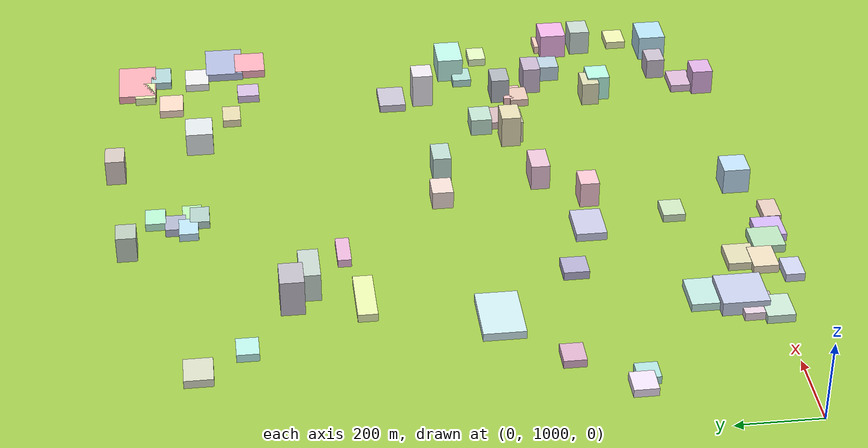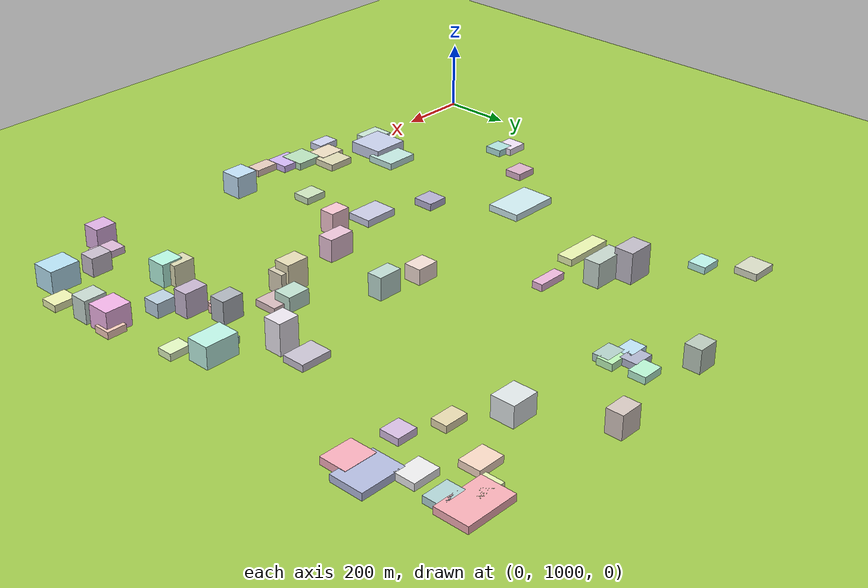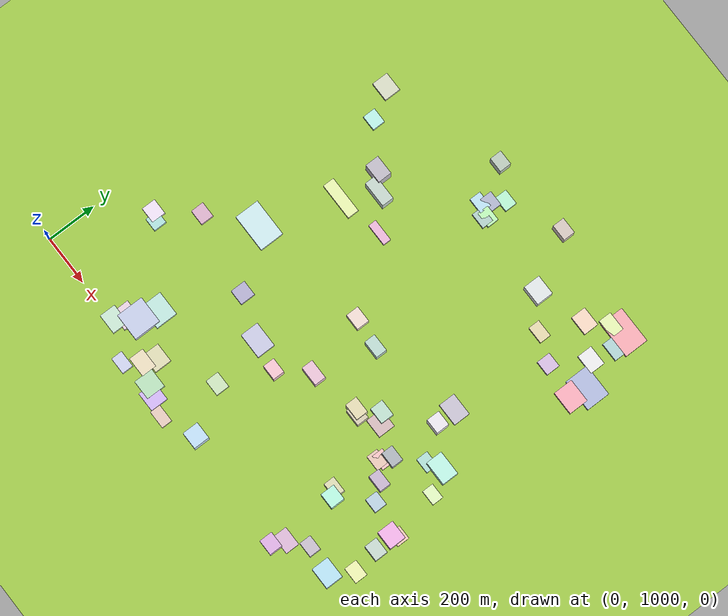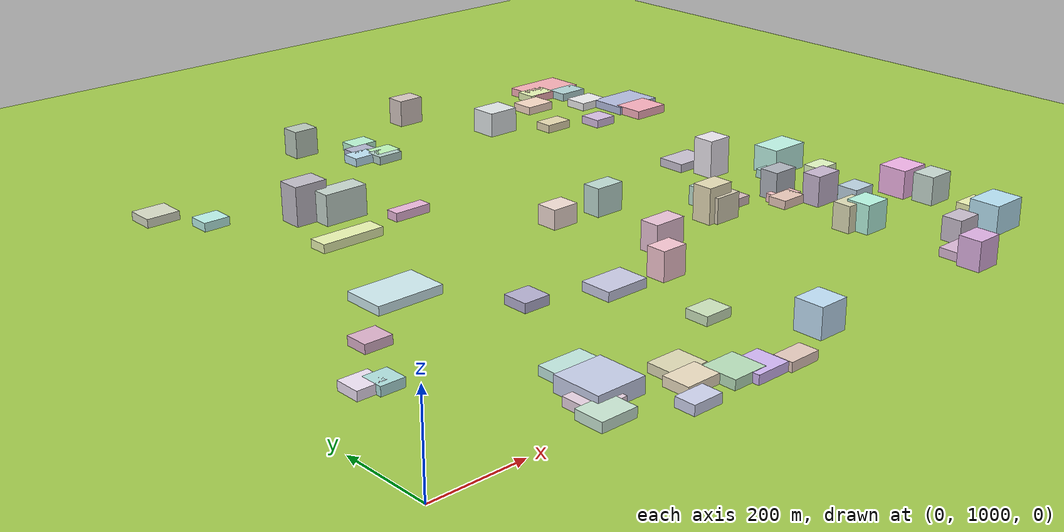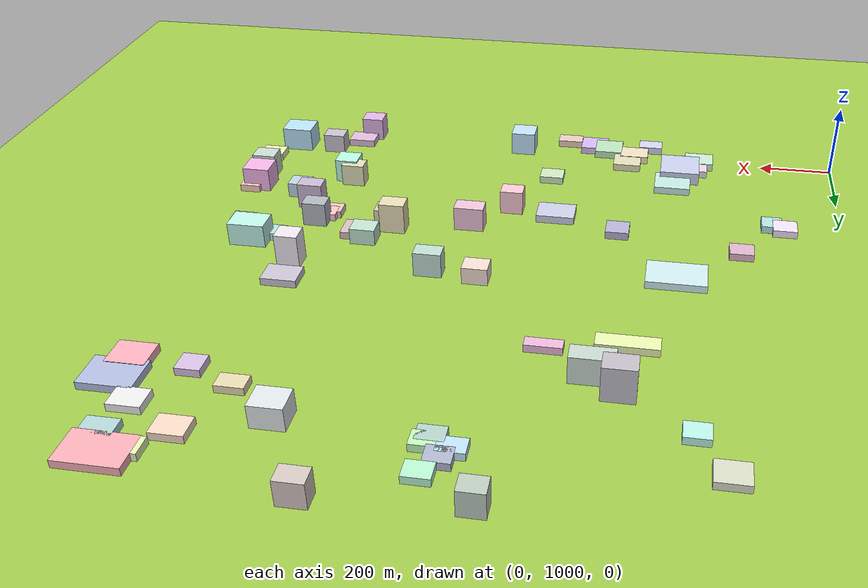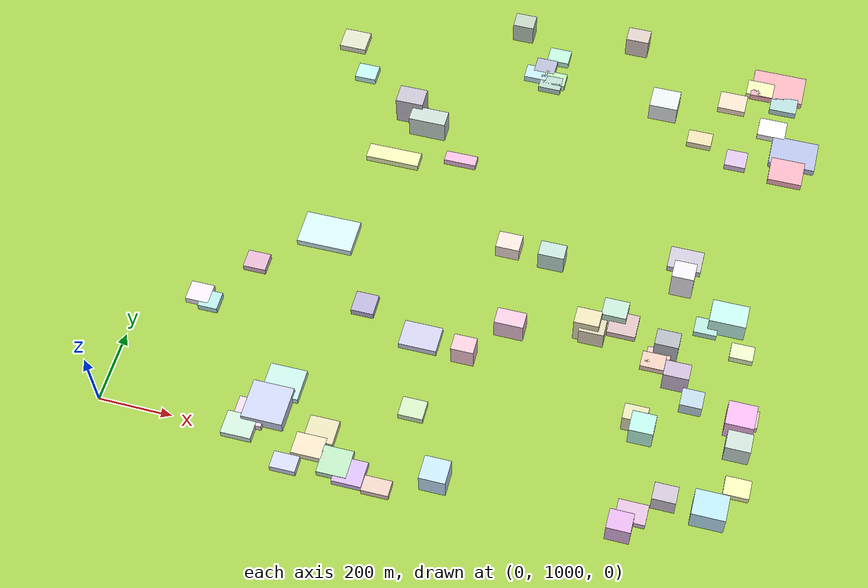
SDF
<sdf version="1.9">
 <world name="city_map">
  <model name="ground_plane">
   <static>1</static>
   <link name="link">
    <collision name="collision">
     <geometry><plane><normal>0 0 1</normal><size>11000 11000</size></plane></geometry>
    </collision>
    <visual name="visual">
     <geometry><plane><normal>0 0 1</normal><size>11000 11000</size></plane></geometry>
     <material>
      <ambient>0.551 0.712 0.210 1</ambient>
      <diffuse>0.651 0.812 0.310 1</diffuse>
      <specular>0.1 0.1 0.05 1</specular>
     </material>
    </visual>
   </link>
  </model>
  <model name="building_325885655">
   <static>1</static>
   <pose>428.7381181272286 1638.1807071609608 10.0 0 0 0</pose>
   <link name="link">
    <collision name="collision">
     <geometry><box><size>153.72785864208527 99.25619999973634 20</size></box></geometry>
    </collision>
    <visual name="visual">
     <cast_shadows>false</cast_shadows>
     <geometry><box><size>153.72785864208527 99.25619999973634 20</size></box></geometry>
     <material>
      <ambient>0.733 0.845 0.862 1</ambient>
      <diffuse>0.833 0.945 0.962 1</diffuse>
      <specular>0.250 0.283 0.289 1</specular>
      <emissive>0.01 0.01 0.01 1</emissive>
     </material>
    </visual>
   </link>
  </model>
  <model name="building_637589526">
   <static>1</static>
   <pose>1550.929921580241 2452.594800055273 10.0 0 0 0</pose>
   <link name="link">
    <collision name="collision">
     <geometry><box><size>149.7056436254227 96.86969999945205 20</size></box></geometry>
    </collision>
    <visual name="visual">
     <cast_shadows>false</cast_shadows>
     <geometry><box><size>149.7056436254227 96.86969999945205 20</size></box></geometry>
     <material>
      <ambient>0.893 0.604 0.637 1</ambient>
      <diffuse>0.993 0.704 0.737 1</diffuse>
      <specular>0.298 0.211 0.221 1</specular>
      <emissive>0.01 0.01 0.01 1</emissive>
     </material>
    </visual>
   </link>
  </model>
  <model name="building_208743985">
   <static>1</static>
   <pose>1629.7475028175272 2221.404826897431 10.0 0 0 0</pose>
   <link name="link">
    <collision name="collision">
     <geometry><box><size>130.01276491818692 96.60330000028239 20</size></box></geometry>
    </collision>
    <visual name="visual">
     <cast_shadows>false</cast_shadows>
     <geometry><box><size>130.01276491818692 96.60330000028239 20</size></box></geometry>
     <material>
      <ambient>0.623 0.657 0.798 1</ambient>
      <diffuse>0.723 0.757 0.898 1</diffuse>
      <specular>0.217 0.227 0.269 1</specular>
      <emissive>0.01 0.01 0.01 1</emissive>
     </material>
    </visual>
   </link>
  </model>
  <model name="building_532786541">
   <static>1</static>
   <pose>435.84364067665626 1080.8595767871814 17.51581821020846 0 0 0</pose>
   <link name="link">
    <collision name="collision">
     <geometry><box><size>110.07870000001674 109.61628154665829 35.03163642041692</size></box></geometry>
    </collision>
    <visual name="visual">
     <cast_shadows>false</cast_shadows>
     <geometry><box><size>110.07870000001674 109.61628154665829 35.03163642041692</size></box></geometry>
     <material>
      <ambient>0.700 0.732 0.841 1</ambient>
      <diffuse>0.800 0.832 0.941 1</diffuse>
      <specular>0.240 0.250 0.282 1</specular>
      <emissive>0.01 0.01 0.01 1</emissive>
     </material>
    </visual>
   </link>
  </model>
  <model name="building_692972055">
   <static>1</static>
   <pose>454.5526141400233 1157.3921058071455 10.0 0 0 0</pose>
   <link name="link">
    <collision name="collision">
     <geometry><box><size>99.31169999959621 88.54675700813507 20</size></box></geometry>
    </collision>
    <visual name="visual">
     <cast_shadows>false</cast_shadows>
     <geometry><box><size>99.31169999959621 88.54675700813507 20</size></box></geometry>
     <material>
      <ambient>0.679 0.832 0.800 1</ambient>
      <diffuse>0.779 0.932 0.900 1</diffuse>
      <specular>0.234 0.280 0.270 1</specular>
      <emissive>0.01 0.01 0.01 1</emissive>
     </material>
    </visual>
   </link>
  </model>
  <model name="building_201931414">
   <static>1</static>
   <pose>762.0030936798811 1377.1801157474456 10.5 0 0 0</pose>
   <link name="link">
    <collision name="collision">
     <geometry><box><size>103.16339999965152 74.38980615344144 21.0</size></box></geometry>
    </collision>
    <visual name="visual">
     <cast_shadows>false</cast_shadows>
     <geometry><box><size>103.16339999965152 74.38980615344144 21.0</size></box></geometry>
     <material>
      <ambient>0.712 0.719 0.823 1</ambient>
      <diffuse>0.812 0.819 0.923 1</diffuse>
      <specular>0.244 0.246 0.277 1</specular>
      <emissive>0.01 0.01 0.01 1</emissive>
     </material>
    </visual>
   </link>
  </model>
  <model name="building_591781154">
   <static>1</static>
   <pose>1619.237313043225 2153.046444894032 10.5 0 0 0</pose>
   <link name="link">
    <collision name="collision">
     <geometry><box><size>94.78705442267326 78.84330000016604 21.0</size></box></geometry>
    </collision>
    <visual name="visual">
     <cast_shadows>false</cast_shadows>
     <geometry><box><size>94.78705442267326 78.84330000016604 21.0</size></box></geometry>
     <material>
      <ambient>0.898 0.607 0.662 1</ambient>
      <diffuse>0.998 0.707 0.762 1</diffuse>
      <specular>0.299 0.212 0.229 1</specular>
      <emissive>0.01 0.01 0.01 1</emissive>
     </material>
    </visual>
   </link>
  </model>
  <model name="building_854965103">
   <static>1</static>
   <pose>530.1238908614528 1936.1975763358118 10.0 0 0 0</pose>
   <link name="link">
    <collision name="collision">
     <geometry><box><size>150.70469999997727 46.28161063746272 20</size></box></geometry>
    </collision>
    <visual name="visual">
     <cast_shadows>false</cast_shadows>
     <geometry><box><size>150.70469999997727 46.28161063746272 20</size></box></geometry>
     <material>
      <ambient>0.841 0.885 0.615 1</ambient>
      <diffuse>0.941 0.985 0.715 1</diffuse>
      <specular>0.282 0.295 0.215 1</specular>
      <emissive>0.01 0.01 0.01 1</emissive>
     </material>
    </visual>
   </link>
  </model>
  <model name="building_373298944">
   <static>1</static>
   <pose>1541.7555554224364 1621.0613935208246 31.12633787046029 0 0 0</pose>
   <link name="link">
    <collision name="collision">
     <geometry><box><size>97.97734653621065 66.67769999996409 62.25267574092058</size></box></geometry>
    </collision>
    <visual name="visual">
     <cast_shadows>false</cast_shadows>
     <geometry><box><size>97.97734653621065 66.67769999996409 62.25267574092058</size></box></geometry>
     <material>
      <ambient>0.667 0.881 0.825 1</ambient>
      <diffuse>0.767 0.981 0.925 1</diffuse>
      <specular>0.230 0.294 0.278 1</specular>
      <emissive>0.01 0.01 0.01 1</emissive>
     </material>
    </visual>
   </link>
  </model>
  <model name="building_577687187">
   <static>1</static>
   <pose>1398.059814503205 1789.655163361432 10.0 0 0 0</pose>
   <link name="link">
    <collision name="collision">
     <geometry><box><size>91.55327283545738 67.52129999956935 20</size></box></geometry>
    </collision>
    <visual name="visual">
     <cast_shadows>false</cast_shadows>
     <geometry><box><size>91.55327283545738 67.52129999956935 20</size></box></geometry>
     <material>
      <ambient>0.711 0.686 0.749 1</ambient>
      <diffuse>0.811 0.786 0.849 1</diffuse>
      <specular>0.243 0.236 0.255 1</specular>
      <emissive>0.01 0.01 0.01 1</emissive>
     </material>
    </visual>
   </link>
  </model>
  <model name="building_940697946">
   <static>1</static>
   <pose>1588.651989037992 1062.656050032169 33.0 0 0 0</pose>
   <link name="link">
    <collision name="collision">
     <geometry><box><size>86.85749999996517 70.84267004295856 66.0</size></box></geometry>
    </collision>
    <visual name="visual">
     <cast_shadows>false</cast_shadows>
     <geometry><box><size>86.85749999996517 70.84267004295856 66.0</size></box></geometry>
     <material>
      <ambient>0.638 0.810 0.882 1</ambient>
      <diffuse>0.738 0.910 0.982 1</diffuse>
      <specular>0.221 0.273 0.295 1</specular>
      <emissive>0.01 0.01 0.01 1</emissive>
     </material>
    </visual>
   </link>
  </model>
  <model name="building_871242810">
   <static>1</static>
   <pose>650.1718540907343 968.5413875811522 10.5 0 0 0</pose>
   <link name="link">
    <collision name="collision">
     <geometry><box><size>78.95419972834397 77.41139999999547 21.0</size></box></geometry>
    </collision>
    <visual name="visual">
     <cast_shadows>false</cast_shadows>
     <geometry><box><size>78.95419972834397 77.41139999999547 21.0</size></box></geometry>
     <material>
      <ambient>0.647 0.807 0.661 1</ambient>
      <diffuse>0.747 0.907 0.761 1</diffuse>
      <specular>0.224 0.272 0.228 1</specular>
      <emissive>0.01 0.01 0.01 1</emissive>
     </material>
    </visual>
   </link>
  </model>
  <model name="building_189473893">
   <static>1</static>
   <pose>397.15274867575164 1052.0415366248574 10.0 0 0 0</pose>
   <link name="link">
    <collision name="collision">
     <geometry><box><size>79.72269638875775 73.73729999964951 20</size></box></geometry>
    </collision>
    <visual name="visual">
     <cast_shadows>false</cast_shadows>
     <geometry><box><size>79.72269638875775 73.73729999964951 20</size></box></geometry>
     <material>
      <ambient>0.833 0.752 0.813 1</ambient>
      <diffuse>0.933 0.852 0.913 1</diffuse>
      <specular>0.280 0.256 0.274 1</specular>
      <emissive>0.01 0.01 0.01 1</emissive>
     </material>
    </visual>
   </link>
  </model>
  <model name="building_477744799">
   <static>1</static>
   <pose>694.1136430318578 951.0084607260701 10.0 0 0 0</pose>
   <link name="link">
    <collision name="collision">
     <geometry><box><size>78.11070000028053 71.51971203683186 20</size></box></geometry>
    </collision>
    <visual name="visual">
     <cast_shadows>false</cast_shadows>
     <geometry><box><size>78.11070000028053 71.51971203683186 20</size></box></geometry>
     <material>
      <ambient>0.748 0.638 0.887 1</ambient>
      <diffuse>0.848 0.738 0.987 1</diffuse>
      <specular>0.254 0.221 0.296 1</specular>
      <emissive>0.01 0.01 0.01 1</emissive>
     </material>
    </visual>
   </link>
  </model>
  <model name="building_943522415">
   <static>1</static>
   <pose>1241.8319336735578 2295.209030722155 30.0 0 0 0</pose>
   <link name="link">
    <collision name="collision">
     <geometry><box><size>80.09759999983856 68.00967844373255 60.0</size></box></geometry>
    </collision>
    <visual name="visual">
     <cast_shadows>false</cast_shadows>
     <geometry><box><size>80.09759999983856 68.00967844373255 60.0</size></box></geometry>
     <material>
      <ambient>0.805 0.829 0.836 1</ambient>
      <diffuse>0.905 0.929 0.936 1</diffuse>
      <specular>0.272 0.279 0.281 1</specular>
      <emissive>0.01 0.01 0.01 1</emissive>
     </material>
    </visual>
   </link>
  </model>
  <model name="building_451020405">
   <static>1</static>
   <pose>590.410226458163 1046.3432172723208 10.0 0 0 0</pose>
   <link name="link">
    <collision name="collision">
     <geometry><box><size>78.34379999984975 69.26273840152345 20</size></box></geometry>
    </collision>
    <visual name="visual">
     <cast_shadows>false</cast_shadows>
     <geometry><box><size>78.34379999984975 69.26273840152345 20</size></box></geometry>
     <material>
      <ambient>0.798 0.782 0.634 1</ambient>
      <diffuse>0.898 0.882 0.734 1</diffuse>
      <specular>0.269 0.264 0.220 1</specular>
      <emissive>0.01 0.01 0.01 1</emissive>
     </material>
    </visual>
   </link>
  </model>
  <model name="building_761434801">
   <static>1</static>
   <pose>1274.3244549487476 1546.6168240277057 10.0 0 0 0</pose>
   <link name="link">
    <collision name="collision">
     <geometry><box><size>77.15610000016682 68.75607954619069 20</size></box></geometry>
    </collision>
    <visual name="visual">
     <cast_shadows>false</cast_shadows>
     <geometry><box><size>77.15610000016682 68.75607954619069 20</size></box></geometry>
     <material>
      <ambient>0.762 0.655 0.664 1</ambient>
      <diffuse>0.862 0.755 0.764 1</diffuse>
      <specular>0.258 0.226 0.229 1</specular>
      <emissive>0.01 0.01 0.01 1</emissive>
     </material>
    </visual>
   </link>
  </model>
  <model name="building_677948641">
   <static>1</static>
   <pose>381.36963841769744 1008.584624760031 10.5 0 0 0</pose>
   <link name="link">
    <collision name="collision">
     <geometry><box><size>80.86349999932452 65.5560265837182 21.0</size></box></geometry>
    </collision>
    <visual name="visual">
     <cast_shadows>false</cast_shadows>
     <geometry><box><size>80.86349999932452 65.5560265837182 21.0</size></box></geometry>
     <material>
      <ambient>0.713 0.828 0.754 1</ambient>
      <diffuse>0.813 0.928 0.854 1</diffuse>
      <specular>0.244 0.278 0.256 1</specular>
      <emissive>0.01 0.01 0.01 1</emissive>
     </material>
    </visual>
   </link>
  </model>
  <model name="building_556221724">
   <static>1</static>
   <pose>301.627029561739 2321.9625572729465 10.0 0 0 0</pose>
   <link name="link">
    <collision name="collision">
     <geometry><box><size>77.62230000009396 66.32843262507858 20</size></box></geometry>
    </collision>
    <visual name="visual">
     <cast_shadows>false</cast_shadows>
     <geometry><box><size>77.62230000009396 66.32843262507858 20</size></box></geometry>
     <material>
      <ambient>0.768 0.785 0.696 1</ambient>
      <diffuse>0.868 0.885 0.796 1</diffuse>
      <specular>0.261 0.265 0.239 1</specular>
      <emissive>0.01 0.01 0.01 1</emissive>
     </material>
    </visual>
   </link>
  </model>
  <model name="building_489993057">
   <static>1</static>
   <pose>1621.7086542236711 1328.4144893087666 33.0 0 0 0</pose>
   <link name="link">
    <collision name="collision">
     <geometry><box><size>74.93762628659772 68.03190000001536 66.0</size></box></geometry>
    </collision>
    <visual name="visual">
     <cast_shadows>false</cast_shadows>
     <geometry><box><size>74.93762628659772 68.03190000001536 66.0</size></box></geometry>
     <material>
      <ambient>0.874 0.627 0.833 1</ambient>
      <diffuse>0.974 0.727 0.933 1</diffuse>
      <specular>0.292 0.218 0.280 1</specular>
      <emissive>0.01 0.01 0.01 1</emissive>
     </material>
    </visual>
   </link>
  </model>
  <model name="building_71901103">
   <static>1</static>
   <pose>600.5139939924985 2058.6272895198317 35.70617112991153 0 0 0</pose>
   <link name="link">
    <collision name="collision">
     <geometry><box><size>104.44286927962057 48.129599999313655 71.41234225982306</size></box></geometry>
    </collision>
    <visual name="visual">
     <cast_shadows>false</cast_shadows>
     <geometry><box><size>104.44286927962057 48.129599999313655 71.41234225982306</size></box></geometry>
     <material>
      <ambient>0.697 0.760 0.725 1</ambient>
      <diffuse>0.797 0.860 0.825 1</diffuse>
      <specular>0.239 0.258 0.248 1</specular>
      <emissive>0.01 0.01 0.01 1</emissive>
     </material>
    </visual>
   </link>
  </model>
  <model name="building_783892909">
   <static>1</static>
   <pose>572.2818002259338 995.7244948085226 10.5 0 0 0</pose>
   <link name="link">
    <collision name="collision">
     <geometry><box><size>79.93975099240949 60.716999999712584 21.0</size></box></geometry>
    </collision>
    <visual name="visual">
     <cast_shadows>false</cast_shadows>
     <geometry><box><size>79.93975099240949 60.716999999712584 21.0</size></box></geometry>
     <material>
      <ambient>0.849 0.791 0.679 1</ambient>
      <diffuse>0.949 0.891 0.779 1</diffuse>
      <specular>0.285 0.267 0.234 1</specular>
      <emissive>0.01 0.01 0.01 1</emissive>
     </material>
    </visual>
   </link>
  </model>
  <model name="building_897703681">
   <static>1</static>
   <pose>1557.5831148999753 2295.147257284246 10.0 0 0 0</pose>
   <link name="link">
    <collision name="collision">
     <geometry><box><size>78.57689999941897 61.143855703607585 20</size></box></geometry>
    </collision>
    <visual name="visual">
     <cast_shadows>false</cast_shadows>
     <geometry><box><size>78.57689999941897 61.143855703607585 20</size></box></geometry>
     <material>
      <ambient>0.853 0.853 0.858 1</ambient>
      <diffuse>0.953 0.953 0.958 1</diffuse>
      <specular>0.286 0.286 0.287 1</specular>
      <emissive>0.01 0.01 0.01 1</emissive>
     </material>
    </visual>
   </link>
  </model>
  <model name="building_132176657">
   <static>1</static>
   <pose>1431.476998984062 2364.664267678509 10.0 0 0 0</pose>
   <link name="link">
    <collision name="collision">
     <geometry><box><size>78.39929999970963 61.09572438401024 20</size></box></geometry>
    </collision>
    <visual name="visual">
     <cast_shadows>false</cast_shadows>
     <geometry><box><size>78.39929999970963 61.09572438401024 20</size></box></geometry>
     <material>
      <ambient>0.896 0.777 0.694 1</ambient>
      <diffuse>0.996 0.877 0.794 1</diffuse>
      <specular>0.299 0.263 0.238 1</specular>
      <emissive>0.01 0.01 0.01 1</emissive>
     </material>
    </visual>
   </link>
  </model>
  <model name="building_33381945">
   <static>1</static>
   <pose>907.1668487123276 987.728004407306 33.0 0 0 0</pose>
   <link name="link">
    <collision name="collision">
     <geometry><box><size>69.16897538446685 65.13480000007377 66.0</size></box></geometry>
    </collision>
    <visual name="visual">
     <cast_shadows>false</cast_shadows>
     <geometry><box><size>69.16897538446685 65.13480000007377 66.0</size></box></geometry>
     <material>
      <ambient>0.676 0.798 0.891 1</ambient>
      <diffuse>0.776 0.898 0.991 1</diffuse>
      <specular>0.233 0.269 0.297 1</specular>
      <emissive>0.01 0.01 0.01 1</emissive>
     </material>
    </visual>
   </link>
  </model>
  <model name="building_228463977">
   <static>1</static>
   <pose>538.4156312091342 2102.70051064505 45.148392671599694 0 0 0</pose>
   <link name="link">
    <collision name="collision">
     <geometry><box><size>78.60508550089742 56.26590000053966 90.29678534319939</size></box></geometry>
    </collision>
    <visual name="visual">
     <cast_shadows>false</cast_shadows>
     <geometry><box><size>78.60508550089742 56.26590000053966 90.29678534319939</size></box></geometry>
     <material>
      <ambient>0.676 0.657 0.704 1</ambient>
      <diffuse>0.776 0.757 0.804 1</diffuse>
      <specular>0.233 0.227 0.241 1</specular>
      <emissive>0.01 0.01 0.01 1</emissive>
     </material>
    </visual>
   </link>
  </model>
  <model name="building_55836477">
   <static>1</static>
   <pose>1403.645930995114 1017.3795698320612 10.0 0 0 0</pose>
   <link name="link">
    <collision name="collision">
     <geometry><box><size>77.52190166962733 56.532300000498026 20</size></box></geometry>
    </collision>
    <visual name="visual">
     <cast_shadows>false</cast_shadows>
     <geometry><box><size>77.52190166962733 56.532300000498026 20</size></box></geometry>
     <material>
      <ambient>0.787 0.650 0.770 1</ambient>
      <diffuse>0.887 0.750 0.870 1</diffuse>
      <specular>0.266 0.225 0.261 1</specular>
      <emissive>0.01 0.01 0.01 1</emissive>
     </material>
    </visual>
   </link>
  </model>
  <model name="building_952936846">
   <static>1</static>
   <pose>1501.650128613299 2432.0166761942805 10.0 0 0 0</pose>
   <link name="link">
    <collision name="collision">
     <geometry><box><size>76.7297419936917 51.970200000027944 20</size></box></geometry>
    </collision>
    <visual name="visual">
     <cast_shadows>false</cast_shadows>
     <geometry><box><size>76.7297419936917 51.970200000027944 20</size></box></geometry>
     <material>
      <ambient>0.830 0.886 0.630 1</ambient>
      <diffuse>0.930 0.986 0.730 1</diffuse>
      <specular>0.279 0.296 0.219 1</specular>
      <emissive>0.01 0.01 0.01 1</emissive>
     </material>
    </visual>
   </link>
  </model>
  <model name="building_354601029">
   <static>1</static>
   <pose>1576.3004363328125 2389.9074494138063 10.0 0 0 0</pose>
   <link name="link">
    <collision name="collision">
     <geometry><box><size>76.0148695680065 52.10340000000713 20</size></box></geometry>
    </collision>
    <visual name="visual">
     <cast_shadows>false</cast_shadows>
     <geometry><box><size>76.0148695680065 52.10340000000713 20</size></box></geometry>
     <material>
      <ambient>0.617 0.757 0.762 1</ambient>
      <diffuse>0.717 0.857 0.862 1</diffuse>
      <specular>0.215 0.257 0.259 1</specular>
      <emissive>0.01 0.01 0.01 1</emissive>
     </material>
    </visual>
   </link>
  </model>
  <model name="building_213673485">
   <static>1</static>
   <pose>590.3188144591687 1439.782488797717 10.5 0 0 0</pose>
   <link name="link">
    <collision name="collision">
     <geometry><box><size>61.893600000054505 60.81024038424644 21.0</size></box></geometry>
    </collision>
    <visual name="visual">
     <cast_shadows>false</cast_shadows>
     <geometry><box><size>61.893600000054505 60.81024038424644 21.0</size></box></geometry>
     <material>
      <ambient>0.629 0.610 0.744 1</ambient>
      <diffuse>0.729 0.710 0.844 1</diffuse>
      <specular>0.219 0.213 0.253 1</specular>
      <emissive>0.01 0.01 0.01 1</emissive>
     </material>
    </visual>
   </link>
  </model>
  <model name="building_109356087">
   <static>1</static>
   <pose>984.7983493082404 1463.6576280477004 33.0 0 0 0</pose>
   <link name="link">
    <collision name="collision">
     <geometry><box><size>78.79763525105253 46.60889999968276 66.0</size></box></geometry>
    </collision>
    <visual name="visual">
     <cast_shadows>false</cast_shadows>
     <geometry><box><size>78.79763525105253 46.60889999968276 66.0</size></box></geometry>
     <material>
      <ambient>0.843 0.689 0.769 1</ambient>
      <diffuse>0.943 0.789 0.869 1</diffuse>
      <specular>0.283 0.237 0.261 1</specular>
      <emissive>0.01 0.01 0.01 1</emissive>
     </material>
    </visual>
   </link>
  </model>
  <model name="building_581006566">
   <static>1</static>
   <pose>1382.888949473033 1244.6859862284548 33.0 0 0 0</pose>
   <link name="link">
    <collision name="collision">
     <geometry><box><size>63.447600000074544 57.61879380531237 66.0</size></box></geometry>
    </collision>
    <visual name="visual">
     <cast_shadows>false</cast_shadows>
     <geometry><box><size>63.447600000074544 57.61879380531237 66.0</size></box></geometry>
     <material>
      <ambient>0.638 0.894 0.809 1</ambient>
      <diffuse>0.738 0.994 0.909 1</diffuse>
      <specular>0.221 0.298 0.273 1</specular>
      <emissive>0.01 0.01 0.01 1</emissive>
     </material>
    </visual>
   </link>
  </model>
  <model name="building_412689924">
   <static>1</static>
   <pose>150.1237341682752 1363.8701756904459 10.0 0 0 0</pose>
   <link name="link">
    <collision name="collision">
     <geometry><box><size>63.84970186971748 56.93189999964687 20</size></box></geometry>
    </collision>
    <visual name="visual">
     <cast_shadows>false</cast_shadows>
     <geometry><box><size>63.84970186971748 56.93189999964687 20</size></box></geometry>
     <material>
      <ambient>0.864 0.814 0.890 1</ambient>
      <diffuse>0.964 0.914 0.990 1</diffuse>
      <specular>0.289 0.274 0.297 1</specular>
      <emissive>0.01 0.01 0.01 1</emissive>
     </material>
    </visual>
   </link>
  </model>
  <model name="building_428110936">
   <static>1</static>
   <pose>799.4277439166146 1164.4165925822367 10.0 0 0 0</pose>
   <link name="link">
    <collision name="collision">
     <geometry><box><size>66.01991614621399 54.50099999963243 20</size></box></geometry>
    </collision>
    <visual name="visual">
     <cast_shadows>false</cast_shadows>
     <geometry><box><size>66.01991614621399 54.50099999963243 20</size></box></geometry>
     <material>
      <ambient>0.728 0.822 0.666 1</ambient>
      <diffuse>0.828 0.922 0.766 1</diffuse>
      <specular>0.248 0.277 0.230 1</specular>
      <emissive>0.01 0.01 0.01 1</emissive>
     </material>
    </visual>
   </link>
  </model>
  <model name="building_173678548">
   <static>1</static>
   <pose>1246.238654501489 1574.4078544100882 22.120811741748724 0 0 0</pose>
   <link name="link">
    <collision name="collision">
     <geometry><box><size>66.8583616177853 53.712900000675745 44.24162348349745</size></box></geometry>
    </collision>
    <visual name="visual">
     <cast_shadows>false</cast_shadows>
     <geometry><box><size>66.8583616177853 53.712900000675745 44.24162348349745</size></box></geometry>
     <material>
      <ambient>0.674 0.804 0.736 1</ambient>
      <diffuse>0.774 0.904 0.836 1</diffuse>
      <specular>0.232 0.271 0.251 1</specular>
      <emissive>0.01 0.01 0.01 1</emissive>
     </material>
    </visual>
   </link>
  </model>
  <model name="building_338250268">
   <static>1</static>
   <pose>1646.281351965021 1148.3455898335048 10.0 0 0 0</pose>
   <link name="link">
    <collision name="collision">
     <geometry><box><size>66.69990000022352 52.035528317606335 20</size></box></geometry>
    </collision>
    <visual name="visual">
     <cast_shadows>false</cast_shadows>
     <geometry><box><size>66.69990000022352 52.035528317606335 20</size></box></geometry>
     <material>
      <ambient>0.857 0.877 0.623 1</ambient>
      <diffuse>0.957 0.977 0.723 1</diffuse>
      <specular>0.287 0.293 0.217 1</specular>
      <emissive>0.01 0.01 0.01 1</emissive>
     </material>
    </visual>
   </link>
  </model>
  <model name="building_528131631">
   <static>1</static>
   <pose>1628.5032217772584 1253.2557792261005 33.0 0 0 0</pose>
   <link name="link">
    <collision name="collision">
     <geometry><box><size>65.27598193062117 52.5918000001937 66.0</size></box></geometry>
    </collision>
    <visual name="visual">
     <cast_shadows>false</cast_shadows>
     <geometry><box><size>65.27598193062117 52.5918000001937 66.0</size></box></geometry>
     <material>
      <ambient>0.703 0.773 0.740 1</ambient>
      <diffuse>0.803 0.873 0.840 1</diffuse>
      <specular>0.241 0.262 0.252 1</specular>
      <emissive>0.01 0.01 0.01 1</emissive>
     </material>
    </visual>
   </link>
  </model>
  <model name="building_861268296">
   <static>1</static>
   <pose>921.484267156287 1713.0586046689318 22.83870684433009 0 0 0</pose>
   <link name="link">
    <collision name="collision">
     <geometry><box><size>65.74530000010981 51.82694131666714 45.67741368866018</size></box></geometry>
    </collision>
    <visual name="visual">
     <cast_shadows>false</cast_shadows>
     <geometry><box><size>65.74530000010981 51.82694131666714 45.67741368866018</size></box></geometry>
     <material>
      <ambient>0.871 0.789 0.754 1</ambient>
      <diffuse>0.971 0.889 0.854 1</diffuse>
      <specular>0.291 0.267 0.256 1</specular>
      <emissive>0.01 0.01 0.01 1</emissive>
     </material>
    </visual>
   </link>
  </model>
  <model name="building_497568340">
   <static>1</static>
   <pose>1474.525016213422 2162.486810403161 10.0 0 0 0</pose>
   <link name="link">
    <collision name="collision">
     <geometry><box><size>59.640300000538105 55.82559130101122 20</size></box></geometry>
    </collision>
    <visual name="visual">
     <cast_shadows>false</cast_shadows>
     <geometry><box><size>59.640300000538105 55.82559130101122 20</size></box></geometry>
     <material>
      <ambient>0.765 0.667 0.813 1</ambient>
      <diffuse>0.865 0.767 0.913 1</diffuse>
      <specular>0.259 0.230 0.274 1</specular>
      <emissive>0.01 0.01 0.01 1</emissive>
     </material>
    </visual>
   </link>
  </model>
  <model name="building_137919852">
   <static>1</static>
   <pose>1381.511440435423 966.2876190392346 33.0 0 0 0</pose>
   <link name="link">
    <collision name="collision">
     <geometry><box><size>62.538025768409085 53.191200000100025 66.0</size></box></geometry>
    </collision>
    <visual name="visual">
     <cast_shadows>false</cast_shadows>
     <geometry><box><size>62.538025768409085 53.191200000100025 66.0</size></box></geometry>
     <material>
      <ambient>0.795 0.614 0.815 1</ambient>
      <diffuse>0.895 0.714 0.915 1</diffuse>
      <specular>0.269 0.214 0.274 1</specular>
      <emissive>0.01 0.01 0.01 1</emissive>
     </material>
    </visual>
   </link>
  </model>
  <model name="building_245943128">
   <static>1</static>
   <pose>266.38594270125117 1499.3079129046507 10.0 0 0 0</pose>
   <link name="link">
    <collision name="collision">
     <geometry><box><size>62.6150999998103 52.80149583984458 20</size></box></geometry>
    </collision>
    <visual name="visual">
     <cast_shadows>false</cast_shadows>
     <geometry><box><size>62.6150999998103 52.80149583984458 20</size></box></geometry>
     <material>
      <ambient>0.785 0.618 0.718 1</ambient>
      <diffuse>0.885 0.718 0.818 1</diffuse>
      <specular>0.266 0.215 0.245 1</specular>
      <emissive>0.01 0.01 0.01 1</emissive>
     </material>
    </visual>
   </link>
  </model>
  <model name="building_700800206">
   <static>1</static>
   <pose>1183.652523370133 1506.5891214341743 41.64384986614074 0 0 0</pose>
   <link name="link">
    <collision name="collision">
     <geometry><box><size>67.4102999998496 48.81088866852912 83.28769973228148</size></box></geometry>
    </collision>
    <visual name="visual">
     <cast_shadows>false</cast_shadows>
     <geometry><box><size>67.4102999998496 48.81088866852912 83.28769973228148</size></box></geometry>
     <material>
      <ambient>0.822 0.784 0.632 1</ambient>
      <diffuse>0.922 0.884 0.732 1</diffuse>
      <specular>0.277 0.265 0.220 1</specular>
      <emissive>0.01 0.01 0.01 1</emissive>
     </material>
    </visual>
   </link>
  </model>
  <model name="building_74243771">
   <static>1</static>
   <pose>1199.8549300687373 1497.974397449736 29.70120206136 0 0 0</pose>
   <link name="link">
    <collision name="collision">
     <geometry><box><size>67.4102999998496 48.79747249293008 59.40240412272</size></box></geometry>
    </collision>
    <visual name="visual">
     <cast_shadows>false</cast_shadows>
     <geometry><box><size>67.4102999998496 48.79747249293008 59.40240412272</size></box></geometry>
     <material>
      <ambient>0.769 0.735 0.635 1</ambient>
      <diffuse>0.869 0.835 0.735 1</diffuse>
      <specular>0.261 0.251 0.221 1</specular>
      <emissive>0.01 0.01 0.01 1</emissive>
     </material>
    </visual>
   </link>
  </model>
  <model name="building_394138771">
   <static>1</static>
   <pose>1044.328684713641 1700.645950228202 33.0 0 0 0</pose>
   <link name="link">
    <collision name="collision">
     <geometry><box><size>71.44106791022082 45.06599999979244 66.0</size></box></geometry>
    </collision>
    <visual name="visual">
     <cast_shadows>false</cast_shadows>
     <geometry><box><size>71.44106791022082 45.06599999979244 66.0</size></box></geometry>
     <material>
      <ambient>0.665 0.781 0.746 1</ambient>
      <diffuse>0.765 0.881 0.846 1</diffuse>
      <specular>0.229 0.264 0.254 1</specular>
      <emissive>0.01 0.01 0.01 1</emissive>
     </material>
    </visual>
   </link>
  </model>
  <model name="building_957937776">
   <static>1</static>
   <pose>1402.5521396692652 1708.4250949700747 44.67499159940279 0 0 0</pose>
   <link name="link">
    <collision name="collision">
     <geometry><box><size>60.14527307443245 53.03579999986141 89.34998319880557</size></box></geometry>
    </collision>
    <visual name="visual">
     <cast_shadows>false</cast_shadows>
     <geometry><box><size>60.14527307443245 53.03579999986141 89.34998319880557</size></box></geometry>
     <material>
      <ambient>0.848 0.828 0.864 1</ambient>
      <diffuse>0.948 0.928 0.964 1</diffuse>
      <specular>0.284 0.278 0.289 1</specular>
      <emissive>0.01 0.01 0.01 1</emissive>
     </material>
    </visual>
   </link>
  </model>
  <model name="building_14885662">
   <static>1</static>
   <pose>1362.105274312099 2210.421310657111 10.0 0 0 0</pose>
   <link name="link">
    <collision name="collision">
     <geometry><box><size>69.57479999990568 45.759146795525645 20</size></box></geometry>
    </collision>
    <visual name="visual">
     <cast_shadows>false</cast_shadows>
     <geometry><box><size>69.57479999990568 45.759146795525645 20</size></box></geometry>
     <material>
      <ambient>0.826 0.775 0.613 1</ambient>
      <diffuse>0.926 0.875 0.713 1</diffuse>
      <specular>0.278 0.263 0.214 1</specular>
      <emissive>0.01 0.01 0.01 1</emissive>
     </material>
    </visual>
   </link>
  </model>
  <model name="building_931276496">
   <static>1</static>
   <pose>370.8427350418011 2211.880585218549 10.0 0 0 0</pose>
   <link name="link">
    <collision name="collision">
     <geometry><box><size>60.84105433776863 51.52619999957153 20</size></box></geometry>
    </collision>
    <visual name="visual">
     <cast_shadows>false</cast_shadows>
     <geometry><box><size>60.84105433776863 51.52619999957153 20</size></box></geometry>
     <material>
      <ambient>0.653 0.872 0.837 1</ambient>
      <diffuse>0.753 0.972 0.937 1</diffuse>
      <specular>0.226 0.292 0.281 1</specular>
      <emissive>0.01 0.01 0.01 1</emissive>
     </material>
    </visual>
   </link>
  </model>
  <model name="building_924793741">
   <static>1</static>
   <pose>1121.804157949422 2506.0782569297717 33.0 0 0 0</pose>
   <link name="link">
    <collision name="collision">
     <geometry><box><size>65.83293395325981 47.619000000445055 66.0</size></box></geometry>
    </collision>
    <visual name="visual">
     <cast_shadows>false</cast_shadows>
     <geometry><box><size>65.83293395325981 47.619000000445055 66.0</size></box></geometry>
     <material>
      <ambient>0.759 0.703 0.677 1</ambient>
      <diffuse>0.859 0.803 0.777 1</diffuse>
      <specular>0.258 0.241 0.233 1</specular>
      <emissive>0.01 0.01 0.01 1</emissive>
     </material>
    </visual>
   </link>
  </model>
  <model name="building_546537136">
   <static>1</static>
   <pose>770.1045139252649 930.0168318692029 10.0 0 0 0</pose>
   <link name="link">
    <collision name="collision">
     <geometry><box><size>71.73929999996176 43.306378004565005 20</size></box></geometry>
    </collision>
    <visual name="visual">
     <cast_shadows>false</cast_shadows>
     <geometry><box><size>71.73929999996176 43.306378004565005 20</size></box></geometry>
     <material>
      <ambient>0.824 0.717 0.669 1</ambient>
      <diffuse>0.924 0.817 0.769 1</diffuse>
      <specular>0.277 0.245 0.231 1</specular>
      <emissive>0.01 0.01 0.01 1</emissive>
     </material>
    </visual>
   </link>
  </model>
  <model name="building_23617583">
   <static>1</static>
   <pose>526.4345235976426 936.8532629560815 10.5 0 0 0</pose>
   <link name="link">
    <collision name="collision">
     <geometry><box><size>67.85302145054544 45.73200000047706 21.0</size></box></geometry>
    </collision>
    <visual name="visual">
     <cast_shadows>false</cast_shadows>
     <geometry><box><size>67.85302145054544 45.73200000047706 21.0</size></box></geometry>
     <material>
      <ambient>0.731 0.750 0.859 1</ambient>
      <diffuse>0.831 0.850 0.959 1</diffuse>
      <specular>0.249 0.255 0.288 1</specular>
      <emissive>0.01 0.01 0.01 1</emissive>
     </material>
    </visual>
   </link>
  </model>
  <model name="building_599054920">
   <static>1</static>
   <pose>905.2213097853147 2410.1823510453496 10.0 0 0 0</pose>
   <link name="link">
    <collision name="collision">
     <geometry><box><size>62.70182291660986 49.22849999953627 20</size></box></geometry>
    </collision>
    <visual name="visual">
     <cast_shadows>false</cast_shadows>
     <geometry><box><size>62.70182291660986 49.22849999953627 20</size></box></geometry>
     <material>
      <ambient>0.644 0.881 0.749 1</ambient>
      <diffuse>0.744 0.981 0.849 1</diffuse>
      <specular>0.223 0.294 0.255 1</specular>
      <emissive>0.01 0.01 0.01 1</emissive>
     </material>
    </visual>
   </link>
  </model>
  <model name="building_499564085">
   <static>1</static>
   <pose>1439.6508808351937 1414.7270286400214 35.261756805674224 0 0 0</pose>
   <link name="link">
    <collision name="collision">
     <geometry><box><size>67.98815241413794 45.077099999922154 70.52351361134845</size></box></geometry>
    </collision>
    <visual name="visual">
     <cast_shadows>false</cast_shadows>
     <geometry><box><size>67.98815241413794 45.077099999922154 70.52351361134845</size></box></geometry>
     <material>
      <ambient>0.703 0.634 0.737 1</ambient>
      <diffuse>0.803 0.734 0.837 1</diffuse>
      <specular>0.241 0.220 0.251 1</specular>
      <emissive>0.01 0.01 0.01 1</emissive>
     </material>
    </visual>
   </link>
  </model>
  <model name="building_314524981">
   <static>1</static>
   <pose>875.0032658140001 2362.548969524353 10.0 0 0 0</pose>
   <link name="link">
    <collision name="collision">
     <geometry><box><size>60.48135820678495 49.58369999974366 20</size></box></geometry>
    </collision>
    <visual name="visual">
     <cast_shadows>false</cast_shadows>
     <geometry><box><size>60.48135820678495 49.58369999974366 20</size></box></geometry>
     <material>
      <ambient>0.616 0.636 0.731 1</ambient>
      <diffuse>0.716 0.736 0.831 1</diffuse>
      <specular>0.215 0.221 0.249 1</specular>
      <emissive>0.01 0.01 0.01 1</emissive>
     </material>
    </visual>
   </link>
  </model>
  <model name="building_95594913">
   <static>1</static>
   <pose>854.1705528603645 2331.648005309952 10.0 0 0 0</pose>
   <link name="link">
    <collision name="collision">
     <geometry><box><size>64.55934493063185 46.35359999985411 20</size></box></geometry>
    </collision>
    <visual name="visual">
     <cast_shadows>false</cast_shadows>
     <geometry><box><size>64.55934493063185 46.35359999985411 20</size></box></geometry>
     <material>
      <ambient>0.665 0.812 0.881 1</ambient>
      <diffuse>0.765 0.912 0.981 1</diffuse>
      <specular>0.229 0.273 0.294 1</specular>
      <emissive>0.01 0.01 0.01 1</emissive>
     </material>
    </visual>
   </link>
  </model>
  <model name="building_426783996">
   <static>1</static>
   <pose>1398.8130464142662 1503.7788755799238 32.967550604349825 0 0 0</pose>
   <link name="link">
    <collision name="collision">
     <geometry><box><size>63.88837406686084 46.79759999952182 65.93510120869965</size></box></geometry>
    </collision>
    <visual name="visual">
     <cast_shadows>false</cast_shadows>
     <geometry><box><size>63.88837406686084 46.79759999952182 65.93510120869965</size></box></geometry>
     <material>
      <ambient>0.608 0.630 0.662 1</ambient>
      <diffuse>0.708 0.730 0.762 1</diffuse>
      <specular>0.212 0.219 0.228 1</specular>
      <emissive>0.01 0.01 0.01 1</emissive>
     </material>
    </visual>
   </link>
  </model>
  <model name="building_146748892">
   <static>1</static>
   <pose>1489.3636248444313 1593.6717953038046 10.0 0 0 0</pose>
   <link name="link">
    <collision name="collision">
     <geometry><box><size>61.78260000033475 48.3238600645589 20</size></box></geometry>
    </collision>
    <visual name="visual">
     <cast_shadows>false</cast_shadows>
     <geometry><box><size>61.78260000033475 48.3238600645589 20</size></box></geometry>
     <material>
      <ambient>0.616 0.799 0.764 1</ambient>
      <diffuse>0.716 0.899 0.864 1</diffuse>
      <specular>0.215 0.270 0.259 1</specular>
      <emissive>0.01 0.01 0.01 1</emissive>
     </material>
    </visual>
   </link>
  </model>
  <model name="building_800869287">
   <static>1</static>
   <pose>902.8870046460581 2304.074676169732 10.0 0 0 0</pose>
   <link name="link">
    <collision name="collision">
     <geometry><box><size>63.844142818625045 46.653300000201625 20</size></box></geometry>
    </collision>
    <visual name="visual">
     <cast_shadows>false</cast_shadows>
     <geometry><box><size>63.844142818625045 46.653300000201625 20</size></box></geometry>
     <material>
      <ambient>0.626 0.742 0.713 1</ambient>
      <diffuse>0.726 0.842 0.813 1</diffuse>
      <specular>0.218 0.253 0.244 1</specular>
      <emissive>0.01 0.01 0.01 1</emissive>
     </material>
    </visual>
   </link>
  </model>
  <model name="building_407627408">
   <static>1</static>
   <pose>1382.9900282032866 1472.2923802921393 10.0 0 0 0</pose>
   <link name="link">
    <collision name="collision">
     <geometry><box><size>63.578185745222356 46.62000000060118 20</size></box></geometry>
    </collision>
    <visual name="visual">
     <cast_shadows>false</cast_shadows>
     <geometry><box><size>63.578185745222356 46.62000000060118 20</size></box></geometry>
     <material>
      <ambient>0.897 0.696 0.701 1</ambient>
      <diffuse>0.997 0.796 0.801 1</diffuse>
      <specular>0.299 0.239 0.240 1</specular>
      <emissive>0.01 0.01 0.01 1</emissive>
     </material>
    </visual>
   </link>
  </model>
  <model name="building_972683706">
   <static>1</static>
   <pose>1491.8419738994062 1358.3385229234066 20.489926258542674 0 0 0</pose>
   <link name="link">
    <collision name="collision">
     <geometry><box><size>58.508099999926344 50.61530871565457 40.97985251708535</size></box></geometry>
    </collision>
    <visual name="visual">
     <cast_shadows>false</cast_shadows>
     <geometry><box><size>58.508099999926344 50.61530871565457 40.97985251708535</size></box></geometry>
     <material>
      <ambient>0.656 0.747 0.806 1</ambient>
      <diffuse>0.756 0.847 0.906 1</diffuse>
      <specular>0.227 0.254 0.272 1</specular>
      <emissive>0.01 0.01 0.01 1</emissive>
     </material>
    </visual>
   </link>
  </model>
  <model name="building_612335513">
   <static>1</static>
   <pose>911.9810442327941 2321.8942099098413 10.0 0 0 0</pose>
   <link name="link">
    <collision name="collision">
     <geometry><box><size>63.41186453269632 46.55339999982289 20</size></box></geometry>
    </collision>
    <visual name="visual">
     <cast_shadows>false</cast_shadows>
     <geometry><box><size>63.41186453269632 46.55339999982289 20</size></box></geometry>
     <material>
      <ambient>0.669 0.898 0.651 1</ambient>
      <diffuse>0.769 0.998 0.751 1</diffuse>
      <specular>0.231 0.299 0.225 1</specular>
      <emissive>0.01 0.01 0.01 1</emissive>
     </material>
    </visual>
   </link>
  </model>
  <model name="building_589407189">
   <static>1</static>
   <pose>1372.7247058530197 1455.9311838532408 10.0 0 0 0</pose>
   <link name="link">
    <collision name="collision">
     <geometry><box><size>63.47035315030409 46.38690000024326 20</size></box></geometry>
    </collision>
    <visual name="visual">
     <cast_shadows>false</cast_shadows>
     <geometry><box><size>63.47035315030409 46.38690000024326 20</size></box></geometry>
     <material>
      <ambient>0.838 0.709 0.650 1</ambient>
      <diffuse>0.938 0.809 0.750 1</diffuse>
      <specular>0.281 0.243 0.225 1</specular>
      <emissive>0.01 0.01 0.01 1</emissive>
     </material>
    </visual>
   </link>
  </model>
  <model name="building_491403581">
   <static>1</static>
   <pose>717.8096370443918 1971.2980288945357 10.0 0 0 0</pose>
   <link name="link">
    <collision name="collision">
     <geometry><box><size>90.39840000033195 32.50826420004702 20</size></box></geometry>
    </collision>
    <visual name="visual">
     <cast_shadows>false</cast_shadows>
     <geometry><box><size>90.39840000033195 32.50826420004702 20</size></box></geometry>
     <material>
      <ambient>0.843 0.638 0.779 1</ambient>
      <diffuse>0.943 0.738 0.879 1</diffuse>
      <specular>0.283 0.222 0.264 1</specular>
      <emissive>0.01 0.01 0.01 1</emissive>
     </material>
    </visual>
   </link>
  </model>
  <model name="building_267801879">
   <static>1</static>
   <pose>783.2429434015498 2477.657192372516 33.0 0 0 0</pose>
   <link name="link">
    <collision name="collision">
     <geometry><box><size>60.26189999991516 48.139579756886825 66.0</size></box></geometry>
    </collision>
    <visual name="visual">
     <cast_shadows>false</cast_shadows>
     <geometry><box><size>60.26189999991516 48.139579756886825 66.0</size></box></geometry>
     <material>
      <ambient>0.655 0.715 0.660 1</ambient>
      <diffuse>0.755 0.815 0.760 1</diffuse>
      <specular>0.226 0.244 0.228 1</specular>
      <emissive>0.01 0.01 0.01 1</emissive>
     </material>
    </visual>
   </link>
  </model>
  <model name="building_949242884">
   <static>1</static>
   <pose>1474.6107193665562 1072.7488849934625 27.0 0 0 0</pose>
   <link name="link">
    <collision name="collision">
     <geometry><box><size>61.18615818623213 47.10839999999905 54.0</size></box></geometry>
    </collision>
    <visual name="visual">
     <cast_shadows>false</cast_shadows>
     <geometry><box><size>61.18615818623213 47.10839999999905 54.0</size></box></geometry>
     <material>
      <ambient>0.707 0.666 0.726 1</ambient>
      <diffuse>0.807 0.766 0.826 1</diffuse>
      <specular>0.242 0.230 0.248 1</specular>
      <emissive>0.01 0.01 0.01 1</emissive>
     </material>
    </visual>
   </link>
  </model>
  <model name="building_589087457">
   <static>1</static>
   <pose>885.8506473059784 1356.9610023757286 33.0 0 0 0</pose>
   <link name="link">
    <collision name="collision">
     <geometry><box><size>61.229898750268326 46.88640000055955 66.0</size></box></geometry>
    </collision>
    <visual name="visual">
     <cast_shadows>false</cast_shadows>
     <geometry><box><size>61.229898750268326 46.88640000055955 66.0</size></box></geometry>
     <material>
      <ambient>0.891 0.699 0.747 1</ambient>
      <diffuse>0.991 0.799 0.847 1</diffuse>
      <specular>0.297 0.240 0.254 1</specular>
      <emissive>0.01 0.01 0.01 1</emissive>
     </material>
    </visual>
   </link>
  </model>
  <model name="building_503932566">
   <static>1</static>
   <pose>1639.0820938063157 1348.9720543810322 10.0 0 0 0</pose>
   <link name="link">
    <collision name="collision">
     <geometry><box><size>56.44932456828231 50.671499999836556 20</size></box></geometry>
    </collision>
    <visual name="visual">
     <cast_shadows>false</cast_shadows>
     <geometry><box><size>56.44932456828231 50.671499999836556 20</size></box></geometry>
     <material>
      <ambient>0.896 0.727 0.660 1</ambient>
      <diffuse>0.996 0.827 0.760 1</diffuse>
      <specular>0.299 0.248 0.228 1</specular>
      <emissive>0.01 0.01 0.01 1</emissive>
     </material>
    </visual>
   </link>
  </model>
  <model name="building_429606969">
   <static>1</static>
   <pose>184.42495562075896 1348.8695167733752 10.0 0 0 0</pose>
   <link name="link">
    <collision name="collision">
     <geometry><box><size>53.590800000037575 52.74240947718566 20</size></box></geometry>
    </collision>
    <visual name="visual">
     <cast_shadows>false</cast_shadows>
     <geometry><box><size>53.590800000037575 52.74240947718566 20</size></box></geometry>
     <material>
      <ambient>0.612 0.807 0.795 1</ambient>
      <diffuse>0.712 0.907 0.895 1</diffuse>
      <specular>0.214 0.272 0.269 1</specular>
      <emissive>0.01 0.01 0.01 1</emissive>
     </material>
    </visual>
   </link>
  </model>
  <model name="building_275935817">
   <static>1</static>
   <pose>1594.5269094196626 1538.7470854597514 10.0 0 0 0</pose>
   <link name="link">
    <collision name="collision">
     <geometry><box><size>62.00459999977426 45.50883423029526 20</size></box></geometry>
    </collision>
    <visual name="visual">
     <cast_shadows>false</cast_shadows>
     <geometry><box><size>62.00459999977426 45.50883423029526 20</size></box></geometry>
     <material>
      <ambient>0.812 0.897 0.682 1</ambient>
      <diffuse>0.912 0.997 0.782 1</diffuse>
      <specular>0.273 0.299 0.234 1</specular>
      <emissive>0.01 0.01 0.01 1</emissive>
     </material>
    </visual>
   </link>
  </model>
  <model name="building_340651208">
   <static>1</static>
   <pose>1359.7823483372497 1269.7952303141483 30.838867426598657 0 0 0</pose>
   <link name="link">
    <collision name="collision">
     <geometry><box><size>63.33660000035479 44.16087542249785 61.677734853197315</size></box></geometry>
    </collision>
    <visual name="visual">
     <cast_shadows>false</cast_shadows>
     <geometry><box><size>63.33660000035479 44.16087542249785 61.677734853197315</size></box></geometry>
     <material>
      <ambient>0.791 0.785 0.633 1</ambient>
      <diffuse>0.891 0.885 0.733 1</diffuse>
      <specular>0.267 0.265 0.220 1</specular>
      <emissive>0.01 0.01 0.01 1</emissive>
     </material>
    </visual>
   </link>
  </model>
 </world>
</sdf>
